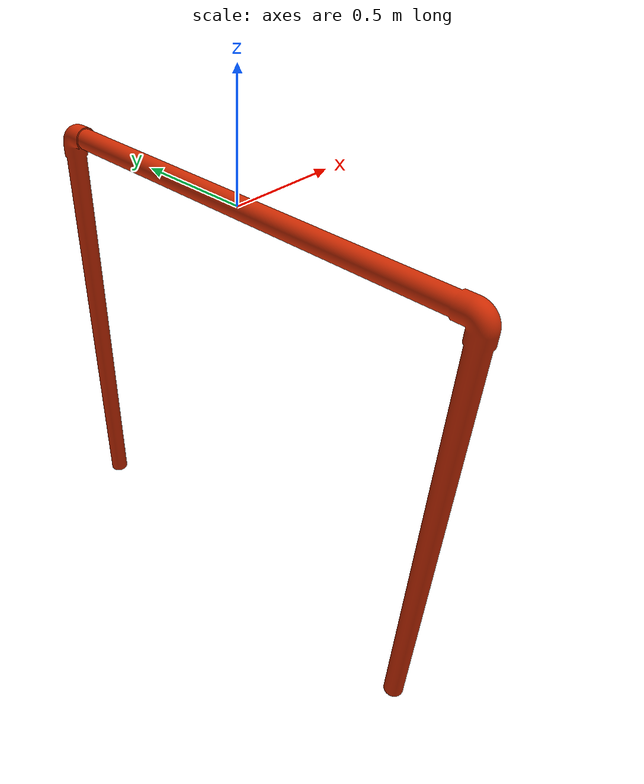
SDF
<?xml version="1.0" ?>
<sdf version="1.5">
<!-- SDF file for the gate -->
<model name="prequal_gate">
  <static>true</static>
  <link name="gate_link">

  <visual name="prequal_gate">
    <pose>0 0 0 0 0 0</pose>
    <geometry>
      <mesh><uri>model://prequal_gate/meshes/prequal_gate.dae</uri><scale>1 1 1</scale></mesh>
    </geometry>
  </visual>

  <collision name="prequal_gate">
    <pose>0 0 0 0 0 0</pose>
    <geometry>
      <mesh><uri>model://prequal_gate/meshes/prequal_gate.stl</uri><scale>1 1 1</scale></mesh>
    </geometry>
  </collision>

  </link>
</model>
</sdf>
